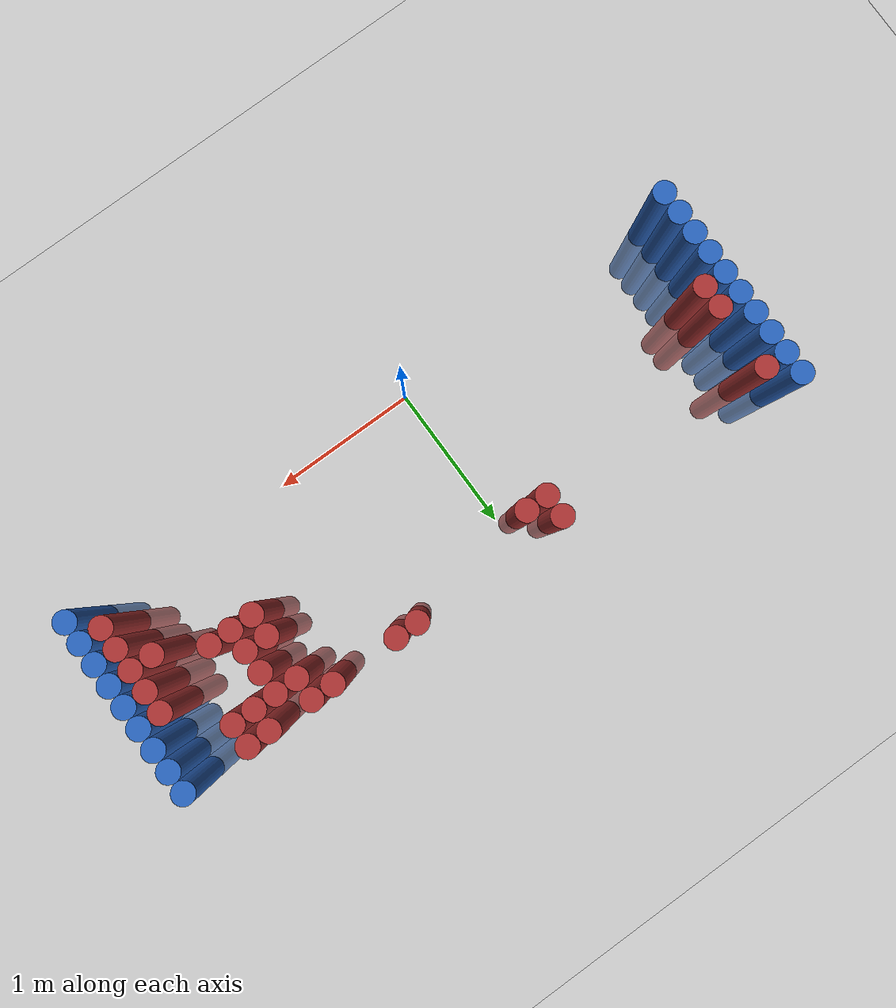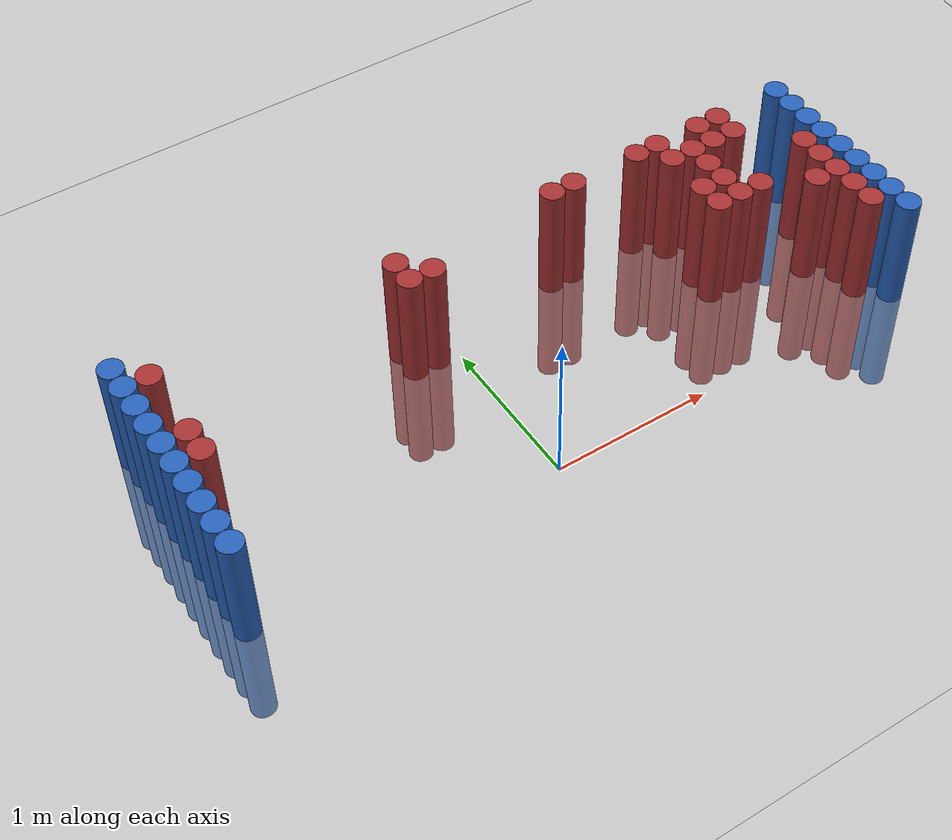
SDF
<sdf version="1.6">
 <world name="default">
  <model name="ground_plane">
   <static>1</static>
   <link name="link">
    <collision name="collision">
     <geometry><plane><normal>0 0 1</normal><size>100 100</size></plane></geometry>
     <surface><friction><ode><mu>100</mu><mu2>50</mu2></ode></friction></surface>
    </collision>
    <visual name="visual">
     <cast_shadows>0</cast_shadows>
     <geometry><plane><normal>0 0 1</normal><size>100 100</size></plane></geometry>
     <material>
      <script><uri>file://media/materials/scripts/gazebo.material</uri><name>Gazebo/Grey</name></script>
     </material>
    </visual>
   </link>
  </model>
  <model name="unit_cylinder_94">
   <static>1</static>
   <pose>2.425000 0.025000 0.000000 0.000000 0.000000 0.000000</pose>
   <link name="link">
    <inertial>
     <mass>1</mass>
     <inertia><ixx>0.145833</ixx><ixy>0</ixy><ixz>0</ixz><iyy>0.145833</iyy><iyz>0</iyz><izz>0.125</izz></inertia>
    </inertial>
    <collision name="collision">
     <geometry><cylinder><radius>0.075000</radius><length>1.5</length></cylinder></geometry>
    </collision>
    <visual name="visual">
     <geometry><cylinder><radius>0.075000</radius><length>1.5</length></cylinder></geometry>
     <material>
      <ambient>0.152000 0.379000 0.720000 1</ambient>
      <diffuse>0.152000 0.379000 0.720000 1</diffuse>
     </material>
     <material>
      <script><name>Gazebo/Grey</name><uri>file://media/materials/scripts/gazebo.material</uri></script>
     </material>
    </visual>
   </link>
  </model>
  <model name="unit_cylinder_95">
   <static>1</static>
   <pose>-1.925000 0.025000 0.000000 0.000000 0.000000 0.000000</pose>
   <link name="link">
    <inertial>
     <mass>1</mass>
     <inertia><ixx>0.145833</ixx><ixy>0</ixy><ixz>0</ixz><iyy>0.145833</iyy><iyz>0</iyz><izz>0.125</izz></inertia>
    </inertial>
    <collision name="collision">
     <geometry><cylinder><radius>0.075000</radius><length>1.5</length></cylinder></geometry>
    </collision>
    <visual name="visual">
     <geometry><cylinder><radius>0.075000</radius><length>1.5</length></cylinder></geometry>
     <material>
      <ambient>0.152000 0.379000 0.720000 1</ambient>
      <diffuse>0.152000 0.379000 0.720000 1</diffuse>
     </material>
     <material>
      <script><name>Gazebo/Grey</name><uri>file://media/materials/scripts/gazebo.material</uri></script>
     </material>
    </visual>
   </link>
  </model>
  <model name="unit_cylinder_96">
   <static>1</static>
   <pose>-1.925000 0.175000 0.000000 0.000000 0.000000 0.000000</pose>
   <link name="link">
    <inertial>
     <mass>1</mass>
     <inertia><ixx>0.145833</ixx><ixy>0</ixy><ixz>0</ixz><iyy>0.145833</iyy><iyz>0</iyz><izz>0.125</izz></inertia>
    </inertial>
    <collision name="collision">
     <geometry><cylinder><radius>0.075000</radius><length>1.5</length></cylinder></geometry>
    </collision>
    <visual name="visual">
     <geometry><cylinder><radius>0.075000</radius><length>1.5</length></cylinder></geometry>
     <material>
      <ambient>0.152000 0.379000 0.720000 1</ambient>
      <diffuse>0.152000 0.379000 0.720000 1</diffuse>
     </material>
     <material>
      <script><name>Gazebo/Grey</name><uri>file://media/materials/scripts/gazebo.material</uri></script>
     </material>
    </visual>
   </link>
  </model>
  <model name="unit_cylinder_97">
   <static>1</static>
   <pose>-1.925000 0.325000 0.000000 0.000000 0.000000 0.000000</pose>
   <link name="link">
    <inertial>
     <mass>1</mass>
     <inertia><ixx>0.145833</ixx><ixy>0</ixy><ixz>0</ixz><iyy>0.145833</iyy><iyz>0</iyz><izz>0.125</izz></inertia>
    </inertial>
    <collision name="collision">
     <geometry><cylinder><radius>0.075000</radius><length>1.5</length></cylinder></geometry>
    </collision>
    <visual name="visual">
     <geometry><cylinder><radius>0.075000</radius><length>1.5</length></cylinder></geometry>
     <material>
      <ambient>0.152000 0.379000 0.720000 1</ambient>
      <diffuse>0.152000 0.379000 0.720000 1</diffuse>
     </material>
     <material>
      <script><name>Gazebo/Grey</name><uri>file://media/materials/scripts/gazebo.material</uri></script>
     </material>
    </visual>
   </link>
  </model>
  <model name="unit_cylinder_98">
   <static>1</static>
   <pose>-1.925000 0.475000 0.000000 0.000000 0.000000 0.000000</pose>
   <link name="link">
    <inertial>
     <mass>1</mass>
     <inertia><ixx>0.145833</ixx><ixy>0</ixy><ixz>0</ixz><iyy>0.145833</iyy><iyz>0</iyz><izz>0.125</izz></inertia>
    </inertial>
    <collision name="collision">
     <geometry><cylinder><radius>0.075000</radius><length>1.5</length></cylinder></geometry>
    </collision>
    <visual name="visual">
     <geometry><cylinder><radius>0.075000</radius><length>1.5</length></cylinder></geometry>
     <material>
      <ambient>0.152000 0.379000 0.720000 1</ambient>
      <diffuse>0.152000 0.379000 0.720000 1</diffuse>
     </material>
     <material>
      <script><name>Gazebo/Grey</name><uri>file://media/materials/scripts/gazebo.material</uri></script>
     </material>
    </visual>
   </link>
  </model>
  <model name="unit_cylinder_99">
   <static>1</static>
   <pose>-1.925000 0.625000 0.000000 0.000000 0.000000 0.000000</pose>
   <link name="link">
    <inertial>
     <mass>1</mass>
     <inertia><ixx>0.145833</ixx><ixy>0</ixy><ixz>0</ixz><iyy>0.145833</iyy><iyz>0</iyz><izz>0.125</izz></inertia>
    </inertial>
    <collision name="collision">
     <geometry><cylinder><radius>0.075000</radius><length>1.5</length></cylinder></geometry>
    </collision>
    <visual name="visual">
     <geometry><cylinder><radius>0.075000</radius><length>1.5</length></cylinder></geometry>
     <material>
      <ambient>0.152000 0.379000 0.720000 1</ambient>
      <diffuse>0.152000 0.379000 0.720000 1</diffuse>
     </material>
     <material>
      <script><name>Gazebo/Grey</name><uri>file://media/materials/scripts/gazebo.material</uri></script>
     </material>
    </visual>
   </link>
  </model>
  <model name="unit_cylinder_100">
   <static>1</static>
   <pose>-1.925000 0.775000 0.000000 0.000000 0.000000 0.000000</pose>
   <link name="link">
    <inertial>
     <mass>1</mass>
     <inertia><ixx>0.145833</ixx><ixy>0</ixy><ixz>0</ixz><iyy>0.145833</iyy><iyz>0</iyz><izz>0.125</izz></inertia>
    </inertial>
    <collision name="collision">
     <geometry><cylinder><radius>0.075000</radius><length>1.5</length></cylinder></geometry>
    </collision>
    <visual name="visual">
     <geometry><cylinder><radius>0.075000</radius><length>1.5</length></cylinder></geometry>
     <material>
      <ambient>0.152000 0.379000 0.720000 1</ambient>
      <diffuse>0.152000 0.379000 0.720000 1</diffuse>
     </material>
     <material>
      <script><name>Gazebo/Grey</name><uri>file://media/materials/scripts/gazebo.material</uri></script>
     </material>
    </visual>
   </link>
  </model>
  <model name="unit_cylinder_101">
   <static>1</static>
   <pose>-1.925000 0.925000 0.000000 0.000000 0.000000 0.000000</pose>
   <link name="link">
    <inertial>
     <mass>1</mass>
     <inertia><ixx>0.145833</ixx><ixy>0</ixy><ixz>0</ixz><iyy>0.145833</iyy><iyz>0</iyz><izz>0.125</izz></inertia>
    </inertial>
    <collision name="collision">
     <geometry><cylinder><radius>0.075000</radius><length>1.5</length></cylinder></geometry>
    </collision>
    <visual name="visual">
     <geometry><cylinder><radius>0.075000</radius><length>1.5</length></cylinder></geometry>
     <material>
      <ambient>0.152000 0.379000 0.720000 1</ambient>
      <diffuse>0.152000 0.379000 0.720000 1</diffuse>
     </material>
     <material>
      <script><name>Gazebo/Grey</name><uri>file://media/materials/scripts/gazebo.material</uri></script>
     </material>
    </visual>
   </link>
  </model>
  <model name="unit_cylinder_102">
   <static>1</static>
   <pose>-1.925000 1.075000 0.000000 0.000000 0.000000 0.000000</pose>
   <link name="link">
    <inertial>
     <mass>1</mass>
     <inertia><ixx>0.145833</ixx><ixy>0</ixy><ixz>0</ixz><iyy>0.145833</iyy><iyz>0</iyz><izz>0.125</izz></inertia>
    </inertial>
    <collision name="collision">
     <geometry><cylinder><radius>0.075000</radius><length>1.5</length></cylinder></geometry>
    </collision>
    <visual name="visual">
     <geometry><cylinder><radius>0.075000</radius><length>1.5</length></cylinder></geometry>
     <material>
      <ambient>0.152000 0.379000 0.720000 1</ambient>
      <diffuse>0.152000 0.379000 0.720000 1</diffuse>
     </material>
     <material>
      <script><name>Gazebo/Grey</name><uri>file://media/materials/scripts/gazebo.material</uri></script>
     </material>
    </visual>
   </link>
  </model>
  <model name="unit_cylinder_103">
   <static>1</static>
   <pose>-1.925000 1.225000 0.000000 0.000000 0.000000 0.000000</pose>
   <link name="link">
    <inertial>
     <mass>1</mass>
     <inertia><ixx>0.145833</ixx><ixy>0</ixy><ixz>0</ixz><iyy>0.145833</iyy><iyz>0</iyz><izz>0.125</izz></inertia>
    </inertial>
    <collision name="collision">
     <geometry><cylinder><radius>0.075000</radius><length>1.5</length></cylinder></geometry>
    </collision>
    <visual name="visual">
     <geometry><cylinder><radius>0.075000</radius><length>1.5</length></cylinder></geometry>
     <material>
      <ambient>0.152000 0.379000 0.720000 1</ambient>
      <diffuse>0.152000 0.379000 0.720000 1</diffuse>
     </material>
     <material>
      <script><name>Gazebo/Grey</name><uri>file://media/materials/scripts/gazebo.material</uri></script>
     </material>
    </visual>
   </link>
  </model>
  <model name="unit_cylinder_104">
   <static>1</static>
   <pose>-1.925000 1.375000 0.000000 0.000000 0.000000 0.000000</pose>
   <link name="link">
    <inertial>
     <mass>1</mass>
     <inertia><ixx>0.145833</ixx><ixy>0</ixy><ixz>0</ixz><iyy>0.145833</iyy><iyz>0</iyz><izz>0.125</izz></inertia>
    </inertial>
    <collision name="collision">
     <geometry><cylinder><radius>0.075000</radius><length>1.5</length></cylinder></geometry>
    </collision>
    <visual name="visual">
     <geometry><cylinder><radius>0.075000</radius><length>1.5</length></cylinder></geometry>
     <material>
      <ambient>0.152000 0.379000 0.720000 1</ambient>
      <diffuse>0.152000 0.379000 0.720000 1</diffuse>
     </material>
     <material>
      <script><name>Gazebo/Grey</name><uri>file://media/materials/scripts/gazebo.material</uri></script>
     </material>
    </visual>
   </link>
  </model>
  <model name="unit_cylinder_126">
   <static>1</static>
   <pose>-1.775000 0.625000 0.000000 0.000000 0.000000 0.000000</pose>
   <link name="link">
    <inertial>
     <mass>1</mass>
     <inertia><ixx>0.145833</ixx><ixy>0</ixy><ixz>0</ixz><iyy>0.145833</iyy><iyz>0</iyz><izz>0.125</izz></inertia>
    </inertial>
    <collision name="collision">
     <geometry><cylinder><radius>0.075000</radius><length>1.5</length></cylinder></geometry>
    </collision>
    <visual name="visual">
     <geometry><cylinder><radius>0.075000</radius><length>1.5</length></cylinder></geometry>
     <material>
      <ambient>0.648000 0.192000 0.192000 1</ambient>
      <diffuse>0.648000 0.192000 0.192000 1</diffuse>
     </material>
     <material>
      <script><name>Gazebo/Grey</name><uri>file://media/materials/scripts/gazebo.material</uri></script>
     </material>
    </visual>
   </link>
  </model>
  <model name="unit_cylinder_127">
   <static>1</static>
   <pose>-1.775000 0.775000 0.000000 0.000000 0.000000 0.000000</pose>
   <link name="link">
    <inertial>
     <mass>1</mass>
     <inertia><ixx>0.145833</ixx><ixy>0</ixy><ixz>0</ixz><iyy>0.145833</iyy><iyz>0</iyz><izz>0.125</izz></inertia>
    </inertial>
    <collision name="collision">
     <geometry><cylinder><radius>0.075000</radius><length>1.5</length></cylinder></geometry>
    </collision>
    <visual name="visual">
     <geometry><cylinder><radius>0.075000</radius><length>1.5</length></cylinder></geometry>
     <material>
      <ambient>0.648000 0.192000 0.192000 1</ambient>
      <diffuse>0.648000 0.192000 0.192000 1</diffuse>
     </material>
     <material>
      <script><name>Gazebo/Grey</name><uri>file://media/materials/scripts/gazebo.material</uri></script>
     </material>
    </visual>
   </link>
  </model>
  <model name="unit_cylinder_128">
   <static>1</static>
   <pose>-1.775000 1.225000 0.000000 0.000000 0.000000 0.000000</pose>
   <link name="link">
    <inertial>
     <mass>1</mass>
     <inertia><ixx>0.145833</ixx><ixy>0</ixy><ixz>0</ixz><iyy>0.145833</iyy><iyz>0</iyz><izz>0.125</izz></inertia>
    </inertial>
    <collision name="collision">
     <geometry><cylinder><radius>0.075000</radius><length>1.5</length></cylinder></geometry>
    </collision>
    <visual name="visual">
     <geometry><cylinder><radius>0.075000</radius><length>1.5</length></cylinder></geometry>
     <material>
      <ambient>0.648000 0.192000 0.192000 1</ambient>
      <diffuse>0.648000 0.192000 0.192000 1</diffuse>
     </material>
     <material>
      <script><name>Gazebo/Grey</name><uri>file://media/materials/scripts/gazebo.material</uri></script>
     </material>
    </visual>
   </link>
  </model>
  <model name="unit_cylinder_151">
   <static>1</static>
   <pose>-0.275000 1.075000 0.000000 0.000000 0.000000 0.000000</pose>
   <link name="link">
    <inertial>
     <mass>1</mass>
     <inertia><ixx>0.145833</ixx><ixy>0</ixy><ixz>0</ixz><iyy>0.145833</iyy><iyz>0</iyz><izz>0.125</izz></inertia>
    </inertial>
    <collision name="collision">
     <geometry><cylinder><radius>0.075000</radius><length>1.5</length></cylinder></geometry>
    </collision>
    <visual name="visual">
     <geometry><cylinder><radius>0.075000</radius><length>1.5</length></cylinder></geometry>
     <material>
      <ambient>0.648000 0.192000 0.192000 1</ambient>
      <diffuse>0.648000 0.192000 0.192000 1</diffuse>
     </material>
     <material>
      <script><name>Gazebo/Grey</name><uri>file://media/materials/scripts/gazebo.material</uri></script>
     </material>
    </visual>
   </link>
  </model>
  <model name="unit_cylinder_152">
   <static>1</static>
   <pose>-0.275000 1.225000 0.000000 0.000000 0.000000 0.000000</pose>
   <link name="link">
    <inertial>
     <mass>1</mass>
     <inertia><ixx>0.145833</ixx><ixy>0</ixy><ixz>0</ixz><iyy>0.145833</iyy><iyz>0</iyz><izz>0.125</izz></inertia>
    </inertial>
    <collision name="collision">
     <geometry><cylinder><radius>0.075000</radius><length>1.5</length></cylinder></geometry>
    </collision>
    <visual name="visual">
     <geometry><cylinder><radius>0.075000</radius><length>1.5</length></cylinder></geometry>
     <material>
      <ambient>0.648000 0.192000 0.192000 1</ambient>
      <diffuse>0.648000 0.192000 0.192000 1</diffuse>
     </material>
     <material>
      <script><name>Gazebo/Grey</name><uri>file://media/materials/scripts/gazebo.material</uri></script>
     </material>
    </visual>
   </link>
  </model>
  <model name="unit_cylinder_153">
   <static>1</static>
   <pose>-0.125000 1.075000 0.000000 0.000000 0.000000 0.000000</pose>
   <link name="link">
    <inertial>
     <mass>1</mass>
     <inertia><ixx>0.145833</ixx><ixy>0</ixy><ixz>0</ixz><iyy>0.145833</iyy><iyz>0</iyz><izz>0.125</izz></inertia>
    </inertial>
    <collision name="collision">
     <geometry><cylinder><radius>0.075000</radius><length>1.5</length></cylinder></geometry>
    </collision>
    <visual name="visual">
     <geometry><cylinder><radius>0.075000</radius><length>1.5</length></cylinder></geometry>
     <material>
      <ambient>0.648000 0.192000 0.192000 1</ambient>
      <diffuse>0.648000 0.192000 0.192000 1</diffuse>
     </material>
     <material>
      <script><name>Gazebo/Grey</name><uri>file://media/materials/scripts/gazebo.material</uri></script>
     </material>
    </visual>
   </link>
  </model>
  <model name="unit_cylinder_172">
   <static>1</static>
   <pose>0.775000 1.225000 0.000000 0.000000 0.000000 0.000000</pose>
   <link name="link">
    <inertial>
     <mass>1</mass>
     <inertia><ixx>0.145833</ixx><ixy>0</ixy><ixz>0</ixz><iyy>0.145833</iyy><iyz>0</iyz><izz>0.125</izz></inertia>
    </inertial>
    <collision name="collision">
     <geometry><cylinder><radius>0.075000</radius><length>1.5</length></cylinder></geometry>
    </collision>
    <visual name="visual">
     <geometry><cylinder><radius>0.075000</radius><length>1.5</length></cylinder></geometry>
     <material>
      <ambient>0.648000 0.192000 0.192000 1</ambient>
      <diffuse>0.648000 0.192000 0.192000 1</diffuse>
     </material>
     <material>
      <script><name>Gazebo/Grey</name><uri>file://media/materials/scripts/gazebo.material</uri></script>
     </material>
    </visual>
   </link>
  </model>
  <model name="unit_cylinder_178">
   <static>1</static>
   <pose>0.925000 1.225000 0.000000 0.000000 0.000000 0.000000</pose>
   <link name="link">
    <inertial>
     <mass>1</mass>
     <inertia><ixx>0.145833</ixx><ixy>0</ixy><ixz>0</ixz><iyy>0.145833</iyy><iyz>0</iyz><izz>0.125</izz></inertia>
    </inertial>
    <collision name="collision">
     <geometry><cylinder><radius>0.075000</radius><length>1.5</length></cylinder></geometry>
    </collision>
    <visual name="visual">
     <geometry><cylinder><radius>0.075000</radius><length>1.5</length></cylinder></geometry>
     <material>
      <ambient>0.648000 0.192000 0.192000 1</ambient>
      <diffuse>0.648000 0.192000 0.192000 1</diffuse>
     </material>
     <material>
      <script><name>Gazebo/Grey</name><uri>file://media/materials/scripts/gazebo.material</uri></script>
     </material>
    </visual>
   </link>
  </model>
  <model name="unit_cylinder_189">
   <static>1</static>
   <pose>1.375000 1.225000 0.000000 0.000000 0.000000 0.000000</pose>
   <link name="link">
    <inertial>
     <mass>1</mass>
     <inertia><ixx>0.145833</ixx><ixy>0</ixy><ixz>0</ixz><iyy>0.145833</iyy><iyz>0</iyz><izz>0.125</izz></inertia>
    </inertial>
    <collision name="collision">
     <geometry><cylinder><radius>0.075000</radius><length>1.5</length></cylinder></geometry>
    </collision>
    <visual name="visual">
     <geometry><cylinder><radius>0.075000</radius><length>1.5</length></cylinder></geometry>
     <material>
      <ambient>0.648000 0.192000 0.192000 1</ambient>
      <diffuse>0.648000 0.192000 0.192000 1</diffuse>
     </material>
     <material>
      <script><name>Gazebo/Grey</name><uri>file://media/materials/scripts/gazebo.material</uri></script>
     </material>
    </visual>
   </link>
  </model>
  <model name="unit_cylinder_197">
   <static>1</static>
   <pose>1.525000 0.625000 0.000000 0.000000 0.000000 0.000000</pose>
   <link name="link">
    <inertial>
     <mass>1</mass>
     <inertia><ixx>0.145833</ixx><ixy>0</ixy><ixz>0</ixz><iyy>0.145833</iyy><iyz>0</iyz><izz>0.125</izz></inertia>
    </inertial>
    <collision name="collision">
     <geometry><cylinder><radius>0.075000</radius><length>1.5</length></cylinder></geometry>
    </collision>
    <visual name="visual">
     <geometry><cylinder><radius>0.075000</radius><length>1.5</length></cylinder></geometry>
     <material>
      <ambient>0.648000 0.192000 0.192000 1</ambient>
      <diffuse>0.648000 0.192000 0.192000 1</diffuse>
     </material>
     <material>
      <script><name>Gazebo/Grey</name><uri>file://media/materials/scripts/gazebo.material</uri></script>
     </material>
    </visual>
   </link>
  </model>
  <model name="unit_cylinder_198">
   <static>1</static>
   <pose>1.525000 0.775000 0.000000 0.000000 0.000000 0.000000</pose>
   <link name="link">
    <inertial>
     <mass>1</mass>
     <inertia><ixx>0.145833</ixx><ixy>0</ixy><ixz>0</ixz><iyy>0.145833</iyy><iyz>0</iyz><izz>0.125</izz></inertia>
    </inertial>
    <collision name="collision">
     <geometry><cylinder><radius>0.075000</radius><length>1.5</length></cylinder></geometry>
    </collision>
    <visual name="visual">
     <geometry><cylinder><radius>0.075000</radius><length>1.5</length></cylinder></geometry>
     <material>
      <ambient>0.648000 0.192000 0.192000 1</ambient>
      <diffuse>0.648000 0.192000 0.192000 1</diffuse>
     </material>
     <material>
      <script><name>Gazebo/Grey</name><uri>file://media/materials/scripts/gazebo.material</uri></script>
     </material>
    </visual>
   </link>
  </model>
  <model name="unit_cylinder_199">
   <static>1</static>
   <pose>1.525000 1.075000 0.000000 0.000000 0.000000 0.000000</pose>
   <link name="link">
    <inertial>
     <mass>1</mass>
     <inertia><ixx>0.145833</ixx><ixy>0</ixy><ixz>0</ixz><iyy>0.145833</iyy><iyz>0</iyz><izz>0.125</izz></inertia>
    </inertial>
    <collision name="collision">
     <geometry><cylinder><radius>0.075000</radius><length>1.5</length></cylinder></geometry>
    </collision>
    <visual name="visual">
     <geometry><cylinder><radius>0.075000</radius><length>1.5</length></cylinder></geometry>
     <material>
      <ambient>0.648000 0.192000 0.192000 1</ambient>
      <diffuse>0.648000 0.192000 0.192000 1</diffuse>
     </material>
     <material>
      <script><name>Gazebo/Grey</name><uri>file://media/materials/scripts/gazebo.material</uri></script>
     </material>
    </visual>
   </link>
  </model>
  <model name="unit_cylinder_200">
   <static>1</static>
   <pose>1.525000 1.225000 0.000000 0.000000 0.000000 0.000000</pose>
   <link name="link">
    <inertial>
     <mass>1</mass>
     <inertia><ixx>0.145833</ixx><ixy>0</ixy><ixz>0</ixz><iyy>0.145833</iyy><iyz>0</iyz><izz>0.125</izz></inertia>
    </inertial>
    <collision name="collision">
     <geometry><cylinder><radius>0.075000</radius><length>1.5</length></cylinder></geometry>
    </collision>
    <visual name="visual">
     <geometry><cylinder><radius>0.075000</radius><length>1.5</length></cylinder></geometry>
     <material>
      <ambient>0.648000 0.192000 0.192000 1</ambient>
      <diffuse>0.648000 0.192000 0.192000 1</diffuse>
     </material>
     <material>
      <script><name>Gazebo/Grey</name><uri>file://media/materials/scripts/gazebo.material</uri></script>
     </material>
    </visual>
   </link>
  </model>
  <model name="unit_cylinder_205">
   <static>1</static>
   <pose>1.675000 0.625000 0.000000 0.000000 0.000000 0.000000</pose>
   <link name="link">
    <inertial>
     <mass>1</mass>
     <inertia><ixx>0.145833</ixx><ixy>0</ixy><ixz>0</ixz><iyy>0.145833</iyy><iyz>0</iyz><izz>0.125</izz></inertia>
    </inertial>
    <collision name="collision">
     <geometry><cylinder><radius>0.075000</radius><length>1.5</length></cylinder></geometry>
    </collision>
    <visual name="visual">
     <geometry><cylinder><radius>0.075000</radius><length>1.5</length></cylinder></geometry>
     <material>
      <ambient>0.648000 0.192000 0.192000 1</ambient>
      <diffuse>0.648000 0.192000 0.192000 1</diffuse>
     </material>
     <material>
      <script><name>Gazebo/Grey</name><uri>file://media/materials/scripts/gazebo.material</uri></script>
     </material>
    </visual>
   </link>
  </model>
  <model name="unit_cylinder_206">
   <static>1</static>
   <pose>1.675000 0.775000 0.000000 0.000000 0.000000 0.000000</pose>
   <link name="link">
    <inertial>
     <mass>1</mass>
     <inertia><ixx>0.145833</ixx><ixy>0</ixy><ixz>0</ixz><iyy>0.145833</iyy><iyz>0</iyz><izz>0.125</izz></inertia>
    </inertial>
    <collision name="collision">
     <geometry><cylinder><radius>0.075000</radius><length>1.5</length></cylinder></geometry>
    </collision>
    <visual name="visual">
     <geometry><cylinder><radius>0.075000</radius><length>1.5</length></cylinder></geometry>
     <material>
      <ambient>0.648000 0.192000 0.192000 1</ambient>
      <diffuse>0.648000 0.192000 0.192000 1</diffuse>
     </material>
     <material>
      <script><name>Gazebo/Grey</name><uri>file://media/materials/scripts/gazebo.material</uri></script>
     </material>
    </visual>
   </link>
  </model>
  <model name="unit_cylinder_207">
   <static>1</static>
   <pose>1.675000 0.925000 0.000000 0.000000 0.000000 0.000000</pose>
   <link name="link">
    <inertial>
     <mass>1</mass>
     <inertia><ixx>0.145833</ixx><ixy>0</ixy><ixz>0</ixz><iyy>0.145833</iyy><iyz>0</iyz><izz>0.125</izz></inertia>
    </inertial>
    <collision name="collision">
     <geometry><cylinder><radius>0.075000</radius><length>1.5</length></cylinder></geometry>
    </collision>
    <visual name="visual">
     <geometry><cylinder><radius>0.075000</radius><length>1.5</length></cylinder></geometry>
     <material>
      <ambient>0.648000 0.192000 0.192000 1</ambient>
      <diffuse>0.648000 0.192000 0.192000 1</diffuse>
     </material>
     <material>
      <script><name>Gazebo/Grey</name><uri>file://media/materials/scripts/gazebo.material</uri></script>
     </material>
    </visual>
   </link>
  </model>
  <model name="unit_cylinder_208">
   <static>1</static>
   <pose>1.675000 1.075000 0.000000 0.000000 0.000000 0.000000</pose>
   <link name="link">
    <inertial>
     <mass>1</mass>
     <inertia><ixx>0.145833</ixx><ixy>0</ixy><ixz>0</ixz><iyy>0.145833</iyy><iyz>0</iyz><izz>0.125</izz></inertia>
    </inertial>
    <collision name="collision">
     <geometry><cylinder><radius>0.075000</radius><length>1.5</length></cylinder></geometry>
    </collision>
    <visual name="visual">
     <geometry><cylinder><radius>0.075000</radius><length>1.5</length></cylinder></geometry>
     <material>
      <ambient>0.648000 0.192000 0.192000 1</ambient>
      <diffuse>0.648000 0.192000 0.192000 1</diffuse>
     </material>
     <material>
      <script><name>Gazebo/Grey</name><uri>file://media/materials/scripts/gazebo.material</uri></script>
     </material>
    </visual>
   </link>
  </model>
  <model name="unit_cylinder_212">
   <static>1</static>
   <pose>1.825000 0.625000 0.000000 0.000000 0.000000 0.000000</pose>
   <link name="link">
    <inertial>
     <mass>1</mass>
     <inertia><ixx>0.145833</ixx><ixy>0</ixy><ixz>0</ixz><iyy>0.145833</iyy><iyz>0</iyz><izz>0.125</izz></inertia>
    </inertial>
    <collision name="collision">
     <geometry><cylinder><radius>0.075000</radius><length>1.5</length></cylinder></geometry>
    </collision>
    <visual name="visual">
     <geometry><cylinder><radius>0.075000</radius><length>1.5</length></cylinder></geometry>
     <material>
      <ambient>0.648000 0.192000 0.192000 1</ambient>
      <diffuse>0.648000 0.192000 0.192000 1</diffuse>
     </material>
     <material>
      <script><name>Gazebo/Grey</name><uri>file://media/materials/scripts/gazebo.material</uri></script>
     </material>
    </visual>
   </link>
  </model>
  <model name="unit_cylinder_213">
   <static>1</static>
   <pose>1.825000 1.075000 0.000000 0.000000 0.000000 0.000000</pose>
   <link name="link">
    <inertial>
     <mass>1</mass>
     <inertia><ixx>0.145833</ixx><ixy>0</ixy><ixz>0</ixz><iyy>0.145833</iyy><iyz>0</iyz><izz>0.125</izz></inertia>
    </inertial>
    <collision name="collision">
     <geometry><cylinder><radius>0.075000</radius><length>1.5</length></cylinder></geometry>
    </collision>
    <visual name="visual">
     <geometry><cylinder><radius>0.075000</radius><length>1.5</length></cylinder></geometry>
     <material>
      <ambient>0.648000 0.192000 0.192000 1</ambient>
      <diffuse>0.648000 0.192000 0.192000 1</diffuse>
     </material>
     <material>
      <script><name>Gazebo/Grey</name><uri>file://media/materials/scripts/gazebo.material</uri></script>
     </material>
    </visual>
   </link>
  </model>
  <model name="unit_cylinder_214">
   <static>1</static>
   <pose>1.825000 1.225000 0.000000 0.000000 0.000000 0.000000</pose>
   <link name="link">
    <inertial>
     <mass>1</mass>
     <inertia><ixx>0.145833</ixx><ixy>0</ixy><ixz>0</ixz><iyy>0.145833</iyy><iyz>0</iyz><izz>0.125</izz></inertia>
    </inertial>
    <collision name="collision">
     <geometry><cylinder><radius>0.075000</radius><length>1.5</length></cylinder></geometry>
    </collision>
    <visual name="visual">
     <geometry><cylinder><radius>0.075000</radius><length>1.5</length></cylinder></geometry>
     <material>
      <ambient>0.648000 0.192000 0.192000 1</ambient>
      <diffuse>0.648000 0.192000 0.192000 1</diffuse>
     </material>
     <material>
      <script><name>Gazebo/Grey</name><uri>file://media/materials/scripts/gazebo.material</uri></script>
     </material>
    </visual>
   </link>
  </model>
  <model name="unit_cylinder_224">
   <static>1</static>
   <pose>1.975000 1.075000 0.000000 0.000000 0.000000 0.000000</pose>
   <link name="link">
    <inertial>
     <mass>1</mass>
     <inertia><ixx>0.145833</ixx><ixy>0</ixy><ixz>0</ixz><iyy>0.145833</iyy><iyz>0</iyz><izz>0.125</izz></inertia>
    </inertial>
    <collision name="collision">
     <geometry><cylinder><radius>0.075000</radius><length>1.5</length></cylinder></geometry>
    </collision>
    <visual name="visual">
     <geometry><cylinder><radius>0.075000</radius><length>1.5</length></cylinder></geometry>
     <material>
      <ambient>0.648000 0.192000 0.192000 1</ambient>
      <diffuse>0.648000 0.192000 0.192000 1</diffuse>
     </material>
     <material>
      <script><name>Gazebo/Grey</name><uri>file://media/materials/scripts/gazebo.material</uri></script>
     </material>
    </visual>
   </link>
  </model>
  <model name="unit_cylinder_225">
   <static>1</static>
   <pose>1.975000 1.225000 0.000000 0.000000 0.000000 0.000000</pose>
   <link name="link">
    <inertial>
     <mass>1</mass>
     <inertia><ixx>0.145833</ixx><ixy>0</ixy><ixz>0</ixz><iyy>0.145833</iyy><iyz>0</iyz><izz>0.125</izz></inertia>
    </inertial>
    <collision name="collision">
     <geometry><cylinder><radius>0.075000</radius><length>1.5</length></cylinder></geometry>
    </collision>
    <visual name="visual">
     <geometry><cylinder><radius>0.075000</radius><length>1.5</length></cylinder></geometry>
     <material>
      <ambient>0.648000 0.192000 0.192000 1</ambient>
      <diffuse>0.648000 0.192000 0.192000 1</diffuse>
     </material>
     <material>
      <script><name>Gazebo/Grey</name><uri>file://media/materials/scripts/gazebo.material</uri></script>
     </material>
    </visual>
   </link>
  </model>
  <model name="unit_cylinder_233">
   <static>1</static>
   <pose>2.125000 0.475000 0.000000 0.000000 0.000000 0.000000</pose>
   <link name="link">
    <inertial>
     <mass>1</mass>
     <inertia><ixx>0.145833</ixx><ixy>0</ixy><ixz>0</ixz><iyy>0.145833</iyy><iyz>0</iyz><izz>0.125</izz></inertia>
    </inertial>
    <collision name="collision">
     <geometry><cylinder><radius>0.075000</radius><length>1.5</length></cylinder></geometry>
    </collision>
    <visual name="visual">
     <geometry><cylinder><radius>0.075000</radius><length>1.5</length></cylinder></geometry>
     <material>
      <ambient>0.648000 0.192000 0.192000 1</ambient>
      <diffuse>0.648000 0.192000 0.192000 1</diffuse>
     </material>
     <material>
      <script><name>Gazebo/Grey</name><uri>file://media/materials/scripts/gazebo.material</uri></script>
     </material>
    </visual>
   </link>
  </model>
  <model name="unit_cylinder_238">
   <static>1</static>
   <pose>2.275000 0.175000 0.000000 0.000000 0.000000 0.000000</pose>
   <link name="link">
    <inertial>
     <mass>1</mass>
     <inertia><ixx>0.145833</ixx><ixy>0</ixy><ixz>0</ixz><iyy>0.145833</iyy><iyz>0</iyz><izz>0.125</izz></inertia>
    </inertial>
    <collision name="collision">
     <geometry><cylinder><radius>0.075000</radius><length>1.5</length></cylinder></geometry>
    </collision>
    <visual name="visual">
     <geometry><cylinder><radius>0.075000</radius><length>1.5</length></cylinder></geometry>
     <material>
      <ambient>0.648000 0.192000 0.192000 1</ambient>
      <diffuse>0.648000 0.192000 0.192000 1</diffuse>
     </material>
     <material>
      <script><name>Gazebo/Grey</name><uri>file://media/materials/scripts/gazebo.material</uri></script>
     </material>
    </visual>
   </link>
  </model>
  <model name="unit_cylinder_239">
   <static>1</static>
   <pose>2.275000 0.325000 0.000000 0.000000 0.000000 0.000000</pose>
   <link name="link">
    <inertial>
     <mass>1</mass>
     <inertia><ixx>0.145833</ixx><ixy>0</ixy><ixz>0</ixz><iyy>0.145833</iyy><iyz>0</iyz><izz>0.125</izz></inertia>
    </inertial>
    <collision name="collision">
     <geometry><cylinder><radius>0.075000</radius><length>1.5</length></cylinder></geometry>
    </collision>
    <visual name="visual">
     <geometry><cylinder><radius>0.075000</radius><length>1.5</length></cylinder></geometry>
     <material>
      <ambient>0.648000 0.192000 0.192000 1</ambient>
      <diffuse>0.648000 0.192000 0.192000 1</diffuse>
     </material>
     <material>
      <script><name>Gazebo/Grey</name><uri>file://media/materials/scripts/gazebo.material</uri></script>
     </material>
    </visual>
   </link>
  </model>
  <model name="unit_cylinder_240">
   <static>1</static>
   <pose>2.275000 0.475000 0.000000 0.000000 0.000000 0.000000</pose>
   <link name="link">
    <inertial>
     <mass>1</mass>
     <inertia><ixx>0.145833</ixx><ixy>0</ixy><ixz>0</ixz><iyy>0.145833</iyy><iyz>0</iyz><izz>0.125</izz></inertia>
    </inertial>
    <collision name="collision">
     <geometry><cylinder><radius>0.075000</radius><length>1.5</length></cylinder></geometry>
    </collision>
    <visual name="visual">
     <geometry><cylinder><radius>0.075000</radius><length>1.5</length></cylinder></geometry>
     <material>
      <ambient>0.648000 0.192000 0.192000 1</ambient>
      <diffuse>0.648000 0.192000 0.192000 1</diffuse>
     </material>
     <material>
      <script><name>Gazebo/Grey</name><uri>file://media/materials/scripts/gazebo.material</uri></script>
     </material>
    </visual>
   </link>
  </model>
  <model name="unit_cylinder_241">
   <static>1</static>
   <pose>2.275000 0.625000 0.000000 0.000000 0.000000 0.000000</pose>
   <link name="link">
    <inertial>
     <mass>1</mass>
     <inertia><ixx>0.145833</ixx><ixy>0</ixy><ixz>0</ixz><iyy>0.145833</iyy><iyz>0</iyz><izz>0.125</izz></inertia>
    </inertial>
    <collision name="collision">
     <geometry><cylinder><radius>0.075000</radius><length>1.5</length></cylinder></geometry>
    </collision>
    <visual name="visual">
     <geometry><cylinder><radius>0.075000</radius><length>1.5</length></cylinder></geometry>
     <material>
      <ambient>0.648000 0.192000 0.192000 1</ambient>
      <diffuse>0.648000 0.192000 0.192000 1</diffuse>
     </material>
     <material>
      <script><name>Gazebo/Grey</name><uri>file://media/materials/scripts/gazebo.material</uri></script>
     </material>
    </visual>
   </link>
  </model>
  <model name="unit_cylinder_242">
   <static>1</static>
   <pose>2.275000 0.775000 0.000000 0.000000 0.000000 0.000000</pose>
   <link name="link">
    <inertial>
     <mass>1</mass>
     <inertia><ixx>0.145833</ixx><ixy>0</ixy><ixz>0</ixz><iyy>0.145833</iyy><iyz>0</iyz><izz>0.125</izz></inertia>
    </inertial>
    <collision name="collision">
     <geometry><cylinder><radius>0.075000</radius><length>1.5</length></cylinder></geometry>
    </collision>
    <visual name="visual">
     <geometry><cylinder><radius>0.075000</radius><length>1.5</length></cylinder></geometry>
     <material>
      <ambient>0.648000 0.192000 0.192000 1</ambient>
      <diffuse>0.648000 0.192000 0.192000 1</diffuse>
     </material>
     <material>
      <script><name>Gazebo/Grey</name><uri>file://media/materials/scripts/gazebo.material</uri></script>
     </material>
    </visual>
   </link>
  </model>
  <model name="unit_cylinder_253">
   <static>1</static>
   <pose>2.425000 0.175000 0.000000 0.000000 0.000000 0.000000</pose>
   <link name="link">
    <inertial>
     <mass>1</mass>
     <inertia><ixx>0.145833</ixx><ixy>0</ixy><ixz>0</ixz><iyy>0.145833</iyy><iyz>0</iyz><izz>0.125</izz></inertia>
    </inertial>
    <collision name="collision">
     <geometry><cylinder><radius>0.075000</radius><length>1.5</length></cylinder></geometry>
    </collision>
    <visual name="visual">
     <geometry><cylinder><radius>0.075000</radius><length>1.5</length></cylinder></geometry>
     <material>
      <ambient>0.152000 0.379000 0.720000 1</ambient>
      <diffuse>0.152000 0.379000 0.720000 1</diffuse>
     </material>
     <material>
      <script><name>Gazebo/Grey</name><uri>file://media/materials/scripts/gazebo.material</uri></script>
     </material>
    </visual>
   </link>
  </model>
  <model name="unit_cylinder_254">
   <static>1</static>
   <pose>2.425000 0.325000 0.000000 0.000000 0.000000 0.000000</pose>
   <link name="link">
    <inertial>
     <mass>1</mass>
     <inertia><ixx>0.145833</ixx><ixy>0</ixy><ixz>0</ixz><iyy>0.145833</iyy><iyz>0</iyz><izz>0.125</izz></inertia>
    </inertial>
    <collision name="collision">
     <geometry><cylinder><radius>0.075000</radius><length>1.5</length></cylinder></geometry>
    </collision>
    <visual name="visual">
     <geometry><cylinder><radius>0.075000</radius><length>1.5</length></cylinder></geometry>
     <material>
      <ambient>0.152000 0.379000 0.720000 1</ambient>
      <diffuse>0.152000 0.379000 0.720000 1</diffuse>
     </material>
     <material>
      <script><name>Gazebo/Grey</name><uri>file://media/materials/scripts/gazebo.material</uri></script>
     </material>
    </visual>
   </link>
  </model>
  <model name="unit_cylinder_255">
   <static>1</static>
   <pose>2.425000 0.475000 0.000000 0.000000 0.000000 0.000000</pose>
   <link name="link">
    <inertial>
     <mass>1</mass>
     <inertia><ixx>0.145833</ixx><ixy>0</ixy><ixz>0</ixz><iyy>0.145833</iyy><iyz>0</iyz><izz>0.125</izz></inertia>
    </inertial>
    <collision name="collision">
     <geometry><cylinder><radius>0.075000</radius><length>1.5</length></cylinder></geometry>
    </collision>
    <visual name="visual">
     <geometry><cylinder><radius>0.075000</radius><length>1.5</length></cylinder></geometry>
     <material>
      <ambient>0.152000 0.379000 0.720000 1</ambient>
      <diffuse>0.152000 0.379000 0.720000 1</diffuse>
     </material>
     <material>
      <script><name>Gazebo/Grey</name><uri>file://media/materials/scripts/gazebo.material</uri></script>
     </material>
    </visual>
   </link>
  </model>
  <model name="unit_cylinder_256">
   <static>1</static>
   <pose>2.425000 0.625000 0.000000 0.000000 0.000000 0.000000</pose>
   <link name="link">
    <inertial>
     <mass>1</mass>
     <inertia><ixx>0.145833</ixx><ixy>0</ixy><ixz>0</ixz><iyy>0.145833</iyy><iyz>0</iyz><izz>0.125</izz></inertia>
    </inertial>
    <collision name="collision">
     <geometry><cylinder><radius>0.075000</radius><length>1.5</length></cylinder></geometry>
    </collision>
    <visual name="visual">
     <geometry><cylinder><radius>0.075000</radius><length>1.5</length></cylinder></geometry>
     <material>
      <ambient>0.152000 0.379000 0.720000 1</ambient>
      <diffuse>0.152000 0.379000 0.720000 1</diffuse>
     </material>
     <material>
      <script><name>Gazebo/Grey</name><uri>file://media/materials/scripts/gazebo.material</uri></script>
     </material>
    </visual>
   </link>
  </model>
  <model name="unit_cylinder_257">
   <static>1</static>
   <pose>2.425000 0.775000 0.000000 0.000000 0.000000 0.000000</pose>
   <link name="link">
    <inertial>
     <mass>1</mass>
     <inertia><ixx>0.145833</ixx><ixy>0</ixy><ixz>0</ixz><iyy>0.145833</iyy><iyz>0</iyz><izz>0.125</izz></inertia>
    </inertial>
    <collision name="collision">
     <geometry><cylinder><radius>0.075000</radius><length>1.5</length></cylinder></geometry>
    </collision>
    <visual name="visual">
     <geometry><cylinder><radius>0.075000</radius><length>1.5</length></cylinder></geometry>
     <material>
      <ambient>0.152000 0.379000 0.720000 1</ambient>
      <diffuse>0.152000 0.379000 0.720000 1</diffuse>
     </material>
     <material>
      <script><name>Gazebo/Grey</name><uri>file://media/materials/scripts/gazebo.material</uri></script>
     </material>
    </visual>
   </link>
  </model>
  <model name="unit_cylinder_258">
   <static>1</static>
   <pose>2.425000 0.925000 0.000000 0.000000 0.000000 0.000000</pose>
   <link name="link">
    <inertial>
     <mass>1</mass>
     <inertia><ixx>0.145833</ixx><ixy>0</ixy><ixz>0</ixz><iyy>0.145833</iyy><iyz>0</iyz><izz>0.125</izz></inertia>
    </inertial>
    <collision name="collision">
     <geometry><cylinder><radius>0.075000</radius><length>1.5</length></cylinder></geometry>
    </collision>
    <visual name="visual">
     <geometry><cylinder><radius>0.075000</radius><length>1.5</length></cylinder></geometry>
     <material>
      <ambient>0.152000 0.379000 0.720000 1</ambient>
      <diffuse>0.152000 0.379000 0.720000 1</diffuse>
     </material>
     <material>
      <script><name>Gazebo/Grey</name><uri>file://media/materials/scripts/gazebo.material</uri></script>
     </material>
    </visual>
   </link>
  </model>
  <model name="unit_cylinder_259">
   <static>1</static>
   <pose>2.425000 1.075000 0.000000 0.000000 0.000000 0.000000</pose>
   <link name="link">
    <inertial>
     <mass>1</mass>
     <inertia><ixx>0.145833</ixx><ixy>0</ixy><ixz>0</ixz><iyy>0.145833</iyy><iyz>0</iyz><izz>0.125</izz></inertia>
    </inertial>
    <collision name="collision">
     <geometry><cylinder><radius>0.075000</radius><length>1.5</length></cylinder></geometry>
    </collision>
    <visual name="visual">
     <geometry><cylinder><radius>0.075000</radius><length>1.5</length></cylinder></geometry>
     <material>
      <ambient>0.152000 0.379000 0.720000 1</ambient>
      <diffuse>0.152000 0.379000 0.720000 1</diffuse>
     </material>
     <material>
      <script><name>Gazebo/Grey</name><uri>file://media/materials/scripts/gazebo.material</uri></script>
     </material>
    </visual>
   </link>
  </model>
  <model name="unit_cylinder_260">
   <static>1</static>
   <pose>2.425000 1.225000 0.000000 0.000000 0.000000 0.000000</pose>
   <link name="link">
    <inertial>
     <mass>1</mass>
     <inertia><ixx>0.145833</ixx><ixy>0</ixy><ixz>0</ixz><iyy>0.145833</iyy><iyz>0</iyz><izz>0.125</izz></inertia>
    </inertial>
    <collision name="collision">
     <geometry><cylinder><radius>0.075000</radius><length>1.5</length></cylinder></geometry>
    </collision>
    <visual name="visual">
     <geometry><cylinder><radius>0.075000</radius><length>1.5</length></cylinder></geometry>
     <material>
      <ambient>0.152000 0.379000 0.720000 1</ambient>
      <diffuse>0.152000 0.379000 0.720000 1</diffuse>
     </material>
     <material>
      <script><name>Gazebo/Grey</name><uri>file://media/materials/scripts/gazebo.material</uri></script>
     </material>
    </visual>
   </link>
  </model>
 </world>
</sdf>
